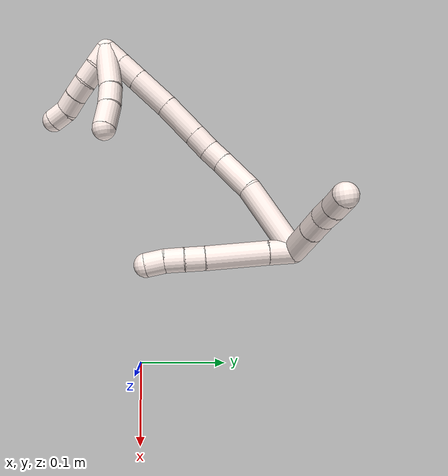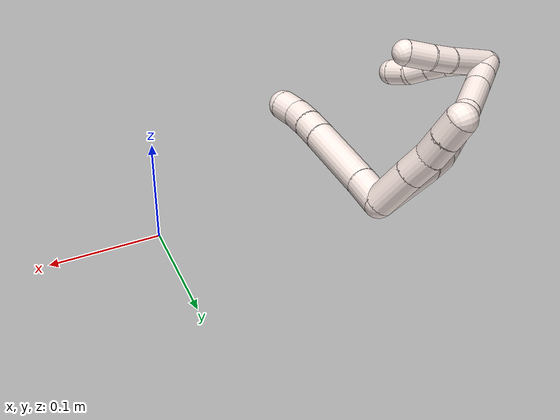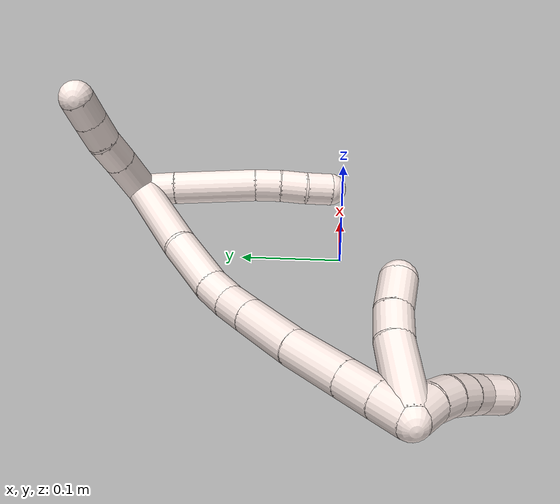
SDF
<sdf version="1.7">
 <world name="default">
  <model name="11">
   <static>0</static>
   <link name="11">
    <collision name="collision-cylinder-e_1_2_8">
     <pose>-0.003458 -0.012545 0.001041 1.48798 -0.268121 -0.247012</pose>
     <geometry><cylinder><radius>0.0125</radius><length>0.026108</length></cylinder></geometry>
     <surface>
      <friction><ode><mu>1.16</mu><mu2>1.16</mu2><slip1>0</slip1><slip2>0</slip2></ode></friction>
      <contact><ode><kp>1e+06</kp><kd>1</kd><max_vel>0</max_vel><min_depth>0.001</min_depth></ode></contact>
     </surface>
    </collision>
    <visual name="visual-cylinder-e_1_2_8">
     <pose>-0.003458 -0.012545 0.001041 1.48798 -0.268121 -0.247012</pose>
     <geometry><cylinder><radius>0.0125</radius><length>0.026108</length></cylinder></geometry>
     <material><ambient>1 0.933333 0.909804 1</ambient></material>
    </visual>
    <collision name="collision-cylinder-e_2_8_9">
     <pose>-0.016241 -0.055456 0.003996 1.50787 -0.297367 -0.279463</pose>
     <geometry><cylinder><radius>0.0125</radius><length>0.063648</length></cylinder></geometry>
     <surface>
      <friction><ode><mu>1.16</mu><mu2>1.16</mu2><slip1>0</slip1><slip2>0</slip2></ode></friction>
      <contact><ode><kp>1e+06</kp><kd>1</kd><max_vel>0</max_vel><min_depth>0.001</min_depth></ode></contact>
     </surface>
    </collision>
    <visual name="visual-cylinder-e_2_8_9">
     <pose>-0.016241 -0.055456 0.003996 1.50787 -0.297367 -0.279463</pose>
     <geometry><cylinder><radius>0.0125</radius><length>0.063648</length></cylinder></geometry>
     <material><ambient>1 0.933333 0.909804 1</ambient></material>
    </visual>
    <collision name="collision-cylinder-e_3_9_10">
     <pose>-0.029066 -0.095246 0.006756 1.48122 -0.354325 -0.324482</pose>
     <geometry><cylinder><radius>0.0125</radius><length>0.020175</length></cylinder></geometry>
     <surface>
      <friction><ode><mu>1.16</mu><mu2>1.16</mu2><slip1>0</slip1><slip2>0</slip2></ode></friction>
      <contact><ode><kp>1e+06</kp><kd>1</kd><max_vel>0</max_vel><min_depth>0.001</min_depth></ode></contact>
     </surface>
    </collision>
    <visual name="visual-cylinder-e_3_9_10">
     <pose>-0.029066 -0.095246 0.006756 1.48122 -0.354325 -0.324482</pose>
     <geometry><cylinder><radius>0.0125</radius><length>0.020175</length></cylinder></geometry>
     <material><ambient>1 0.933333 0.909804 1</ambient></material>
    </visual>
    <collision name="collision-cylinder-e_4_10_11">
     <pose>-0.036749 -0.113726 0.008341 1.48935 -0.431426 -0.398567</pose>
     <geometry><cylinder><radius>0.0125</radius><length>0.020007</length></cylinder></geometry>
     <surface>
      <friction><ode><mu>1.16</mu><mu2>1.16</mu2><slip1>0</slip1><slip2>0</slip2></ode></friction>
      <contact><ode><kp>1e+06</kp><kd>1</kd><max_vel>0</max_vel><min_depth>0.001</min_depth></ode></contact>
     </surface>
    </collision>
    <visual name="visual-cylinder-e_4_10_11">
     <pose>-0.036749 -0.113726 0.008341 1.48935 -0.431426 -0.398567</pose>
     <geometry><cylinder><radius>0.0125</radius><length>0.020007</length></cylinder></geometry>
     <material><ambient>1 0.933333 0.909804 1</ambient></material>
    </visual>
    <collision name="collision-cylinder-e_5_11_6">
     <pose>-0.045042 -0.131907 0.008388 1.64661 -0.422203 -0.454393</pose>
     <geometry><cylinder><radius>0.0125</radius><length>0.020061</length></cylinder></geometry>
     <surface>
      <friction><ode><mu>1.16</mu><mu2>1.16</mu2><slip1>0</slip1><slip2>0</slip2></ode></friction>
      <contact><ode><kp>1e+06</kp><kd>1</kd><max_vel>0</max_vel><min_depth>0.001</min_depth></ode></contact>
     </surface>
    </collision>
    <visual name="visual-cylinder-e_5_11_6">
     <pose>-0.045042 -0.131907 0.008388 1.64661 -0.422203 -0.454393</pose>
     <geometry><cylinder><radius>0.0125</radius><length>0.020061</length></cylinder></geometry>
     <material><ambient>1 0.933333 0.909804 1</ambient></material>
    </visual>
    <collision name="collision-cylinder-e_1_2_12">
     <pose>0.016353 0.001916 0.008578 -0.219787 1.0776 -0.131729</pose>
     <geometry><cylinder><radius>0.0125</radius><length>0.03713</length></cylinder></geometry>
     <surface>
      <friction><ode><mu>1.16</mu><mu2>1.16</mu2><slip1>0</slip1><slip2>0</slip2></ode></friction>
      <contact><ode><kp>1e+06</kp><kd>1</kd><max_vel>0</max_vel><min_depth>0.001</min_depth></ode></contact>
     </surface>
    </collision>
    <visual name="visual-cylinder-e_1_2_12">
     <pose>0.016353 0.001916 0.008578 -0.219787 1.0776 -0.131729</pose>
     <geometry><cylinder><radius>0.0125</radius><length>0.03713</length></cylinder></geometry>
     <material><ambient>1 0.933333 0.909804 1</ambient></material>
    </visual>
    <collision name="collision-cylinder-e_2_12_13">
     <pose>0.042543 0.005239 0.022503 -0.25719 1.0588 -0.151031</pose>
     <geometry><cylinder><radius>0.0125</radius><length>0.022569</length></cylinder></geometry>
     <surface>
      <friction><ode><mu>1.16</mu><mu2>1.16</mu2><slip1>0</slip1><slip2>0</slip2></ode></friction>
      <contact><ode><kp>1e+06</kp><kd>1</kd><max_vel>0</max_vel><min_depth>0.001</min_depth></ode></contact>
     </surface>
    </collision>
    <visual name="visual-cylinder-e_2_12_13">
     <pose>0.042543 0.005239 0.022503 -0.25719 1.0588 -0.151031</pose>
     <geometry><cylinder><radius>0.0125</radius><length>0.022569</length></cylinder></geometry>
     <material><ambient>1 0.933333 0.909804 1</ambient></material>
    </visual>
    <collision name="collision-cylinder-e_3_13_14">
     <pose>0.061709 0.007043 0.031433 -0.110729 1.20202 -0.075959</pose>
     <geometry><cylinder><radius>0.0125</radius><length>0.020002</length></cylinder></geometry>
     <surface>
      <friction><ode><mu>1.16</mu><mu2>1.16</mu2><slip1>0</slip1><slip2>0</slip2></ode></friction>
      <contact><ode><kp>1e+06</kp><kd>1</kd><max_vel>0</max_vel><min_depth>0.001</min_depth></ode></contact>
     </surface>
    </collision>
    <visual name="visual-cylinder-e_3_13_14">
     <pose>0.061709 0.007043 0.031433 -0.110729 1.20202 -0.075959</pose>
     <geometry><cylinder><radius>0.0125</radius><length>0.020002</length></cylinder></geometry>
     <material><ambient>1 0.933333 0.909804 1</ambient></material>
    </visual>
    <collision name="collision-cylinder-e_4_14_5">
     <pose>0.080307 0.007574 0.039147 -0.032037 1.1513 -0.020792</pose>
     <geometry><cylinder><radius>0.0125</radius><length>0.020299</length></cylinder></geometry>
     <surface>
      <friction><ode><mu>1.16</mu><mu2>1.16</mu2><slip1>0</slip1><slip2>0</slip2></ode></friction>
      <contact><ode><kp>1e+06</kp><kd>1</kd><max_vel>0</max_vel><min_depth>0.001</min_depth></ode></contact>
     </surface>
    </collision>
    <visual name="visual-cylinder-e_4_14_5">
     <pose>0.080307 0.007574 0.039147 -0.032037 1.1513 -0.020792</pose>
     <geometry><cylinder><radius>0.0125</radius><length>0.020299</length></cylinder></geometry>
     <material><ambient>1 0.933333 0.909804 1</ambient></material>
    </visual>
    <collision name="collision-cylinder-e_1_2_15">
     <pose>-0.01477 -0.01189 0.035152 0.326154 -0.378796 -0.063062</pose>
     <geometry><cylinder><radius>0.0125</radius><length>0.07988</length></cylinder></geometry>
     <surface>
      <friction><ode><mu>1.16</mu><mu2>1.16</mu2><slip1>0</slip1><slip2>0</slip2></ode></friction>
      <contact><ode><kp>1e+06</kp><kd>1</kd><max_vel>0</max_vel><min_depth>0.001</min_depth></ode></contact>
     </surface>
    </collision>
    <visual name="visual-cylinder-e_1_2_15">
     <pose>-0.01477 -0.01189 0.035152 0.326154 -0.378796 -0.063062</pose>
     <geometry><cylinder><radius>0.0125</radius><length>0.07988</length></cylinder></geometry>
     <material><ambient>1 0.933333 0.909804 1</ambient></material>
    </visual>
    <collision name="collision-cylinder-e_2_15_16">
     <pose>-0.041023 -0.031441 0.086835 0.434002 -0.562363 -0.127188</pose>
     <geometry><cylinder><radius>0.0125</radius><length>0.043072</length></cylinder></geometry>
     <surface>
      <friction><ode><mu>1.16</mu><mu2>1.16</mu2><slip1>0</slip1><slip2>0</slip2></ode></friction>
      <contact><ode><kp>1e+06</kp><kd>1</kd><max_vel>0</max_vel><min_depth>0.001</min_depth></ode></contact>
     </surface>
    </collision>
    <visual name="visual-cylinder-e_2_15_16">
     <pose>-0.041023 -0.031441 0.086835 0.434002 -0.562363 -0.127188</pose>
     <geometry><cylinder><radius>0.0125</radius><length>0.043072</length></cylinder></geometry>
     <material><ambient>1 0.933333 0.909804 1</ambient></material>
    </visual>
    <collision name="collision-cylinder-e_3_16_17">
     <pose>-0.056865 -0.044154 0.111575 0.551655 -0.424727 -0.121905</pose>
     <geometry><cylinder><radius>0.0125</radius><length>0.021158</length></cylinder></geometry>
     <surface>
      <friction><ode><mu>1.16</mu><mu2>1.16</mu2><slip1>0</slip1><slip2>0</slip2></ode></friction>
      <contact><ode><kp>1e+06</kp><kd>1</kd><max_vel>0</max_vel><min_depth>0.001</min_depth></ode></contact>
     </surface>
    </collision>
    <visual name="visual-cylinder-e_3_16_17">
     <pose>-0.056865 -0.044154 0.111575 0.551655 -0.424727 -0.121905</pose>
     <geometry><cylinder><radius>0.0125</radius><length>0.021158</length></cylinder></geometry>
     <material><ambient>1 0.933333 0.909804 1</ambient></material>
    </visual>
    <collision name="collision-cylinder-e_4_17_18">
     <pose>-0.064103 -0.054982 0.12909 0.555511 -0.257022 -0.073656</pose>
     <geometry><cylinder><radius>0.0125</radius><length>0.022651</length></cylinder></geometry>
     <surface>
      <friction><ode><mu>1.16</mu><mu2>1.16</mu2><slip1>0</slip1><slip2>0</slip2></ode></friction>
      <contact><ode><kp>1e+06</kp><kd>1</kd><max_vel>0</max_vel><min_depth>0.001</min_depth></ode></contact>
     </surface>
    </collision>
    <visual name="visual-cylinder-e_4_17_18">
     <pose>-0.064103 -0.054982 0.12909 0.555511 -0.257022 -0.073656</pose>
     <geometry><cylinder><radius>0.0125</radius><length>0.022651</length></cylinder></geometry>
     <material><ambient>1 0.933333 0.909804 1</ambient></material>
    </visual>
    <collision name="collision-cylinder-e_5_18_19">
     <pose>-0.072579 -0.072071 0.156185 0.566402 -0.25951 -0.075914</pose>
     <geometry><cylinder><radius>0.0125</radius><length>0.043622</length></cylinder></geometry>
     <surface>
      <friction><ode><mu>1.16</mu><mu2>1.16</mu2><slip1>0</slip1><slip2>0</slip2></ode></friction>
      <contact><ode><kp>1e+06</kp><kd>1</kd><max_vel>0</max_vel><min_depth>0.001</min_depth></ode></contact>
     </surface>
    </collision>
    <visual name="visual-cylinder-e_5_18_19">
     <pose>-0.072579 -0.072071 0.156185 0.566402 -0.25951 -0.075914</pose>
     <geometry><cylinder><radius>0.0125</radius><length>0.043622</length></cylinder></geometry>
     <material><ambient>1 0.933333 0.909804 1</ambient></material>
    </visual>
    <collision name="collision-cylinder-e_6_19_20">
     <pose>-0.083636 -0.095687 0.190701 0.63419 -0.257113 -0.084793</pose>
     <geometry><cylinder><radius>0.0125</radius><length>0.042943</length></cylinder></geometry>
     <surface>
      <friction><ode><mu>1.16</mu><mu2>1.16</mu2><slip1>0</slip1><slip2>0</slip2></ode></friction>
      <contact><ode><kp>1e+06</kp><kd>1</kd><max_vel>0</max_vel><min_depth>0.001</min_depth></ode></contact>
     </surface>
    </collision>
    <visual name="visual-cylinder-e_6_19_20">
     <pose>-0.083636 -0.095687 0.190701 0.63419 -0.257113 -0.084793</pose>
     <geometry><cylinder><radius>0.0125</radius><length>0.042943</length></cylinder></geometry>
     <material><ambient>1 0.933333 0.909804 1</ambient></material>
    </visual>
    <collision name="collision-cylinder-e_7_20_21">
     <pose>-0.092317 -0.11522 0.217254 0.634316 -0.25819 -0.08517</pose>
     <geometry><cylinder><radius>0.0125</radius><length>0.025233</length></cylinder></geometry>
     <surface>
      <friction><ode><mu>1.16</mu><mu2>1.16</mu2><slip1>0</slip1><slip2>0</slip2></ode></friction>
      <contact><ode><kp>1e+06</kp><kd>1</kd><max_vel>0</max_vel><min_depth>0.001</min_depth></ode></contact>
     </surface>
    </collision>
    <visual name="visual-cylinder-e_7_20_21">
     <pose>-0.092317 -0.11522 0.217254 0.634316 -0.25819 -0.08517</pose>
     <geometry><cylinder><radius>0.0125</radius><length>0.025233</length></cylinder></geometry>
     <material><ambient>1 0.933333 0.909804 1</ambient></material>
    </visual>
    <collision name="collision-cylinder-e_8_21_1">
     <pose>-0.098262 -0.12864 0.235398 0.639892 -0.256855 -0.085522</pose>
     <geometry><cylinder><radius>0.0125</radius><length>0.021442</length></cylinder></geometry>
     <surface>
      <friction><ode><mu>1.16</mu><mu2>1.16</mu2><slip1>0</slip1><slip2>0</slip2></ode></friction>
      <contact><ode><kp>1e+06</kp><kd>1</kd><max_vel>0</max_vel><min_depth>0.001</min_depth></ode></contact>
     </surface>
    </collision>
    <visual name="visual-cylinder-e_8_21_1">
     <pose>-0.098262 -0.12864 0.235398 0.639892 -0.256855 -0.085522</pose>
     <geometry><cylinder><radius>0.0125</radius><length>0.021442</length></cylinder></geometry>
     <material><ambient>1 0.933333 0.909804 1</ambient></material>
    </visual>
    <collision name="collision-cylinder-e_1_1_22">
     <pose>-0.103792 -0.141238 0.236568 2.41081 -0.284545 -0.716516</pose>
     <geometry><cylinder><radius>0.0125</radius><length>0.02</length></cylinder></geometry>
     <surface>
      <friction><ode><mu>1.16</mu><mu2>1.16</mu2><slip1>0</slip1><slip2>0</slip2></ode></friction>
      <contact><ode><kp>1e+06</kp><kd>1</kd><max_vel>0</max_vel><min_depth>0.001</min_depth></ode></contact>
     </surface>
    </collision>
    <visual name="visual-cylinder-e_1_1_22">
     <pose>-0.103792 -0.141238 0.236568 2.41081 -0.284545 -0.716516</pose>
     <geometry><cylinder><radius>0.0125</radius><length>0.02</length></cylinder></geometry>
     <material><ambient>1 0.933333 0.909804 1</ambient></material>
    </visual>
    <collision name="collision-cylinder-e_2_22_23">
     <pose>-0.111204 -0.153671 0.222904 2.39521 -0.478459 -1.11422</pose>
     <geometry><cylinder><radius>0.0125</radius><length>0.02</length></cylinder></geometry>
     <surface>
      <friction><ode><mu>1.16</mu><mu2>1.16</mu2><slip1>0</slip1><slip2>0</slip2></ode></friction>
      <contact><ode><kp>1e+06</kp><kd>1</kd><max_vel>0</max_vel><min_depth>0.001</min_depth></ode></contact>
     </surface>
    </collision>
    <visual name="visual-cylinder-e_2_22_23">
     <pose>-0.111204 -0.153671 0.222904 2.39521 -0.478459 -1.11422</pose>
     <geometry><cylinder><radius>0.0125</radius><length>0.02</length></cylinder></geometry>
     <material><ambient>1 0.933333 0.909804 1</ambient></material>
    </visual>
    <collision name="collision-cylinder-e_3_23_24">
     <pose>-0.121752 -0.165028 0.210364 2.41719 -0.63648 -1.43132</pose>
     <geometry><cylinder><radius>0.0125</radius><length>0.02</length></cylinder></geometry>
     <surface>
      <friction><ode><mu>1.16</mu><mu2>1.16</mu2><slip1>0</slip1><slip2>0</slip2></ode></friction>
      <contact><ode><kp>1e+06</kp><kd>1</kd><max_vel>0</max_vel><min_depth>0.001</min_depth></ode></contact>
     </surface>
    </collision>
    <visual name="visual-cylinder-e_3_23_24">
     <pose>-0.121752 -0.165028 0.210364 2.41719 -0.63648 -1.43132</pose>
     <geometry><cylinder><radius>0.0125</radius><length>0.02</length></cylinder></geometry>
     <material><ambient>1 0.933333 0.909804 1</ambient></material>
    </visual>
    <collision name="collision-cylinder-e_4_24_25">
     <pose>-0.133903 -0.175302 0.198258 2.45906 -0.669763 -1.55039</pose>
     <geometry><cylinder><radius>0.0125</radius><length>0.02</length></cylinder></geometry>
     <surface>
      <friction><ode><mu>1.16</mu><mu2>1.16</mu2><slip1>0</slip1><slip2>0</slip2></ode></friction>
      <contact><ode><kp>1e+06</kp><kd>1</kd><max_vel>0</max_vel><min_depth>0.001</min_depth></ode></contact>
     </surface>
    </collision>
    <visual name="visual-cylinder-e_4_24_25">
     <pose>-0.133903 -0.175302 0.198258 2.45906 -0.669763 -1.55039</pose>
     <geometry><cylinder><radius>0.0125</radius><length>0.02</length></cylinder></geometry>
     <material><ambient>1 0.933333 0.909804 1</ambient></material>
    </visual>
    <collision name="collision-cylinder-e_5_25_4">
     <pose>-0.145966 -0.18743 0.188417 2.05274 -0.625528 -0.981113</pose>
     <geometry><cylinder><radius>0.0125</radius><length>0.02</length></cylinder></geometry>
     <surface>
      <friction><ode><mu>1.16</mu><mu2>1.16</mu2><slip1>0</slip1><slip2>0</slip2></ode></friction>
      <contact><ode><kp>1e+06</kp><kd>1</kd><max_vel>0</max_vel><min_depth>0.001</min_depth></ode></contact>
     </surface>
    </collision>
    <visual name="visual-cylinder-e_5_25_4">
     <pose>-0.145966 -0.18743 0.188417 2.05274 -0.625528 -0.981113</pose>
     <geometry><cylinder><radius>0.0125</radius><length>0.02</length></cylinder></geometry>
     <material><ambient>1 0.933333 0.909804 1</ambient></material>
    </visual>
    <collision name="collision-cylinder-e_1_1_26">
     <pose>-0.091499 -0.138175 0.220574 2.99812 0.385412 2.43588</pose>
     <geometry><cylinder><radius>0.0125</radius><length>0.050464</length></cylinder></geometry>
     <surface>
      <friction><ode><mu>1.16</mu><mu2>1.16</mu2><slip1>0</slip1><slip2>0</slip2></ode></friction>
      <contact><ode><kp>1e+06</kp><kd>1</kd><max_vel>0</max_vel><min_depth>0.001</min_depth></ode></contact>
     </surface>
    </collision>
    <visual name="visual-cylinder-e_1_1_26">
     <pose>-0.091499 -0.138175 0.220574 2.99812 0.385412 2.43588</pose>
     <geometry><cylinder><radius>0.0125</radius><length>0.050464</length></cylinder></geometry>
     <material><ambient>1 0.933333 0.909804 1</ambient></material>
    </visual>
    <collision name="collision-cylinder-e_2_26_27">
     <pose>-0.078443 -0.144585 0.187313 2.84734 0.325608 1.67351</pose>
     <geometry><cylinder><radius>0.0125</radius><length>0.022324</length></cylinder></geometry>
     <surface>
      <friction><ode><mu>1.16</mu><mu2>1.16</mu2><slip1>0</slip1><slip2>0</slip2></ode></friction>
      <contact><ode><kp>1e+06</kp><kd>1</kd><max_vel>0</max_vel><min_depth>0.001</min_depth></ode></contact>
     </surface>
    </collision>
    <visual name="visual-cylinder-e_2_26_27">
     <pose>-0.078443 -0.144585 0.187313 2.84734 0.325608 1.67351</pose>
     <geometry><cylinder><radius>0.0125</radius><length>0.022324</length></cylinder></geometry>
     <material><ambient>1 0.933333 0.909804 1</ambient></material>
    </visual>
    <collision name="collision-cylinder-e_3_27_3">
     <pose>-0.071523 -0.153058 0.165164 2.71916 0.248779 1.05587</pose>
     <geometry><cylinder><radius>0.0125</radius><length>0.027212</length></cylinder></geometry>
     <surface>
      <friction><ode><mu>1.16</mu><mu2>1.16</mu2><slip1>0</slip1><slip2>0</slip2></ode></friction>
      <contact><ode><kp>1e+06</kp><kd>1</kd><max_vel>0</max_vel><min_depth>0.001</min_depth></ode></contact>
     </surface>
    </collision>
    <visual name="visual-cylinder-e_3_27_3">
     <pose>-0.071523 -0.153058 0.165164 2.71916 0.248779 1.05587</pose>
     <geometry><cylinder><radius>0.0125</radius><length>0.027212</length></cylinder></geometry>
     <material><ambient>1 0.933333 0.909804 1</ambient></material>
    </visual>
    <collision name="collision-sphere-3">
     <pose>-0.068172 -0.158465 0.153136 0 -0 0</pose>
     <geometry><sphere><radius>0.0125</radius></sphere></geometry>
     <surface>
      <friction><ode><mu>1.16</mu><mu2>1.16</mu2><slip1>0</slip1><slip2>0</slip2></ode></friction>
      <contact><ode><kp>1e+06</kp><kd>1</kd><max_vel>0</max_vel><min_depth>0.001</min_depth></ode></contact>
     </surface>
    </collision>
    <visual name="visual-sphere-3">
     <pose>-0.068172 -0.158465 0.153136 0 -0 0</pose>
     <geometry><sphere><radius>0.0125</radius></sphere></geometry>
     <material><ambient>1 0.933333 0.909804 1</ambient></material>
    </visual>
    <collision name="collision-sphere-27">
     <pose>-0.074873 -0.147652 0.177192 0 -0 0</pose>
     <geometry><sphere><radius>0.0125</radius></sphere></geometry>
     <surface>
      <friction><ode><mu>1.16</mu><mu2>1.16</mu2><slip1>0</slip1><slip2>0</slip2></ode></friction>
      <contact><ode><kp>1e+06</kp><kd>1</kd><max_vel>0</max_vel><min_depth>0.001</min_depth></ode></contact>
     </surface>
    </collision>
    <visual name="visual-sphere-27">
     <pose>-0.074873 -0.147652 0.177192 0 -0 0</pose>
     <geometry><sphere><radius>0.0125</radius></sphere></geometry>
     <material><ambient>1 0.933333 0.909804 1</ambient></material>
    </visual>
    <collision name="collision-sphere-26">
     <pose>-0.082014 -0.141518 0.197433 0 -0 0</pose>
     <geometry><sphere><radius>0.0125</radius></sphere></geometry>
     <surface>
      <friction><ode><mu>1.16</mu><mu2>1.16</mu2><slip1>0</slip1><slip2>0</slip2></ode></friction>
      <contact><ode><kp>1e+06</kp><kd>1</kd><max_vel>0</max_vel><min_depth>0.001</min_depth></ode></contact>
     </surface>
    </collision>
    <visual name="visual-sphere-26">
     <pose>-0.082014 -0.141518 0.197433 0 -0 0</pose>
     <geometry><sphere><radius>0.0125</radius></sphere></geometry>
     <material><ambient>1 0.933333 0.909804 1</ambient></material>
    </visual>
    <collision name="collision-sphere-4">
     <pose>-0.151822 -0.194614 0.18466 0 -0 0</pose>
     <geometry><sphere><radius>0.0125</radius></sphere></geometry>
     <surface>
      <friction><ode><mu>1.16</mu><mu2>1.16</mu2><slip1>0</slip1><slip2>0</slip2></ode></friction>
      <contact><ode><kp>1e+06</kp><kd>1</kd><max_vel>0</max_vel><min_depth>0.001</min_depth></ode></contact>
     </surface>
    </collision>
    <visual name="visual-sphere-4">
     <pose>-0.151822 -0.194614 0.18466 0 -0 0</pose>
     <geometry><sphere><radius>0.0125</radius></sphere></geometry>
     <material><ambient>1 0.933333 0.909804 1</ambient></material>
    </visual>
    <collision name="collision-sphere-25">
     <pose>-0.140111 -0.180247 0.192175 0 -0 0</pose>
     <geometry><sphere><radius>0.0125</radius></sphere></geometry>
     <surface>
      <friction><ode><mu>1.16</mu><mu2>1.16</mu2><slip1>0</slip1><slip2>0</slip2></ode></friction>
      <contact><ode><kp>1e+06</kp><kd>1</kd><max_vel>0</max_vel><min_depth>0.001</min_depth></ode></contact>
     </surface>
    </collision>
    <visual name="visual-sphere-25">
     <pose>-0.140111 -0.180247 0.192175 0 -0 0</pose>
     <geometry><sphere><radius>0.0125</radius></sphere></geometry>
     <material><ambient>1 0.933333 0.909804 1</ambient></material>
    </visual>
    <collision name="collision-sphere-24">
     <pose>-0.127695 -0.170357 0.204342 0 -0 0</pose>
     <geometry><sphere><radius>0.0125</radius></sphere></geometry>
     <surface>
      <friction><ode><mu>1.16</mu><mu2>1.16</mu2><slip1>0</slip1><slip2>0</slip2></ode></friction>
      <contact><ode><kp>1e+06</kp><kd>1</kd><max_vel>0</max_vel><min_depth>0.001</min_depth></ode></contact>
     </surface>
    </collision>
    <visual name="visual-sphere-24">
     <pose>-0.127695 -0.170357 0.204342 0 -0 0</pose>
     <geometry><sphere><radius>0.0125</radius></sphere></geometry>
     <material><ambient>1 0.933333 0.909804 1</ambient></material>
    </visual>
    <collision name="collision-sphere-23">
     <pose>-0.115808 -0.159699 0.216387 0 -0 0</pose>
     <geometry><sphere><radius>0.0125</radius></sphere></geometry>
     <surface>
      <friction><ode><mu>1.16</mu><mu2>1.16</mu2><slip1>0</slip1><slip2>0</slip2></ode></friction>
      <contact><ode><kp>1e+06</kp><kd>1</kd><max_vel>0</max_vel><min_depth>0.001</min_depth></ode></contact>
     </surface>
    </collision>
    <visual name="visual-sphere-23">
     <pose>-0.115808 -0.159699 0.216387 0 -0 0</pose>
     <geometry><sphere><radius>0.0125</radius></sphere></geometry>
     <material><ambient>1 0.933333 0.909804 1</ambient></material>
    </visual>
    <collision name="collision-sphere-22">
     <pose>-0.1066 -0.147644 0.229421 0 -0 0</pose>
     <geometry><sphere><radius>0.0125</radius></sphere></geometry>
     <surface>
      <friction><ode><mu>1.16</mu><mu2>1.16</mu2><slip1>0</slip1><slip2>0</slip2></ode></friction>
      <contact><ode><kp>1e+06</kp><kd>1</kd><max_vel>0</max_vel><min_depth>0.001</min_depth></ode></contact>
     </surface>
    </collision>
    <visual name="visual-sphere-22">
     <pose>-0.1066 -0.147644 0.229421 0 -0 0</pose>
     <geometry><sphere><radius>0.0125</radius></sphere></geometry>
     <material><ambient>1 0.933333 0.909804 1</ambient></material>
    </visual>
    <collision name="collision-sphere-1">
     <pose>-0.100985 -0.134832 0.243715 0 -0 0</pose>
     <geometry><sphere><radius>0.0125</radius></sphere></geometry>
     <surface>
      <friction><ode><mu>1.16</mu><mu2>1.16</mu2><slip1>0</slip1><slip2>0</slip2></ode></friction>
      <contact><ode><kp>1e+06</kp><kd>1</kd><max_vel>0</max_vel><min_depth>0.001</min_depth></ode></contact>
     </surface>
    </collision>
    <visual name="visual-sphere-1">
     <pose>-0.100985 -0.134832 0.243715 0 -0 0</pose>
     <geometry><sphere><radius>0.0125</radius></sphere></geometry>
     <material><ambient>1 0.933333 0.909804 1</ambient></material>
    </visual>
    <collision name="collision-sphere-21">
     <pose>-0.095538 -0.122449 0.22708 0 -0 0</pose>
     <geometry><sphere><radius>0.0125</radius></sphere></geometry>
     <surface>
      <friction><ode><mu>1.16</mu><mu2>1.16</mu2><slip1>0</slip1><slip2>0</slip2></ode></friction>
      <contact><ode><kp>1e+06</kp><kd>1</kd><max_vel>0</max_vel><min_depth>0.001</min_depth></ode></contact>
     </surface>
    </collision>
    <visual name="visual-sphere-21">
     <pose>-0.095538 -0.122449 0.22708 0 -0 0</pose>
     <geometry><sphere><radius>0.0125</radius></sphere></geometry>
     <material><ambient>1 0.933333 0.909804 1</ambient></material>
    </visual>
    <collision name="collision-sphere-6">
     <pose>-0.049152 -0.14103 0.007695 0 -0 0</pose>
     <geometry><sphere><radius>0.0125</radius></sphere></geometry>
     <surface>
      <friction><ode><mu>1.16</mu><mu2>1.16</mu2><slip1>0</slip1><slip2>0</slip2></ode></friction>
      <contact><ode><kp>1e+06</kp><kd>1</kd><max_vel>0</max_vel><min_depth>0.001</min_depth></ode></contact>
     </surface>
    </collision>
    <visual name="visual-sphere-6">
     <pose>-0.049152 -0.14103 0.007695 0 -0 0</pose>
     <geometry><sphere><radius>0.0125</radius></sphere></geometry>
     <material><ambient>1 0.933333 0.909804 1</ambient></material>
    </visual>
    <collision name="collision-sphere-11">
     <pose>-0.040932 -0.122783 0.009081 0 -0 0</pose>
     <geometry><sphere><radius>0.0125</radius></sphere></geometry>
     <surface>
      <friction><ode><mu>1.16</mu><mu2>1.16</mu2><slip1>0</slip1><slip2>0</slip2></ode></friction>
      <contact><ode><kp>1e+06</kp><kd>1</kd><max_vel>0</max_vel><min_depth>0.001</min_depth></ode></contact>
     </surface>
    </collision>
    <visual name="visual-sphere-11">
     <pose>-0.040932 -0.122783 0.009081 0 -0 0</pose>
     <geometry><sphere><radius>0.0125</radius></sphere></geometry>
     <material><ambient>1 0.933333 0.909804 1</ambient></material>
    </visual>
    <collision name="collision-sphere-10">
     <pose>-0.032566 -0.10467 0.007602 0 -0 0</pose>
     <geometry><sphere><radius>0.0125</radius></sphere></geometry>
     <surface>
      <friction><ode><mu>1.16</mu><mu2>1.16</mu2><slip1>0</slip1><slip2>0</slip2></ode></friction>
      <contact><ode><kp>1e+06</kp><kd>1</kd><max_vel>0</max_vel><min_depth>0.001</min_depth></ode></contact>
     </surface>
    </collision>
    <visual name="visual-sphere-10">
     <pose>-0.032566 -0.10467 0.007602 0 -0 0</pose>
     <geometry><sphere><radius>0.0125</radius></sphere></geometry>
     <material><ambient>1 0.933333 0.909804 1</ambient></material>
    </visual>
    <collision name="collision-sphere-9">
     <pose>-0.025566 -0.085823 0.005909 0 -0 0</pose>
     <geometry><sphere><radius>0.0125</radius></sphere></geometry>
     <surface>
      <friction><ode><mu>1.16</mu><mu2>1.16</mu2><slip1>0</slip1><slip2>0</slip2></ode></friction>
      <contact><ode><kp>1e+06</kp><kd>1</kd><max_vel>0</max_vel><min_depth>0.001</min_depth></ode></contact>
     </surface>
    </collision>
    <visual name="visual-sphere-9">
     <pose>-0.025566 -0.085823 0.005909 0 -0 0</pose>
     <geometry><sphere><radius>0.0125</radius></sphere></geometry>
     <material><ambient>1 0.933333 0.909804 1</ambient></material>
    </visual>
    <collision name="collision-sphere-2">
     <geometry><sphere><radius>0.0125</radius></sphere></geometry>
     <surface>
      <friction><ode><mu>1.16</mu><mu2>1.16</mu2><slip1>0</slip1><slip2>0</slip2></ode></friction>
      <contact><ode><kp>1e+06</kp><kd>1</kd><max_vel>0</max_vel><min_depth>0.001</min_depth></ode></contact>
     </surface>
    </collision>
    <visual name="visual-sphere-2">
     <geometry><sphere><radius>0.0125</radius></sphere></geometry>
     <material><ambient>1 0.933333 0.909804 1</ambient></material>
    </visual>
    <collision name="collision-sphere-19">
     <pose>-0.078176 -0.083383 0.173974 0 -0 0</pose>
     <geometry><sphere><radius>0.0125</radius></sphere></geometry>
     <surface>
      <friction><ode><mu>1.16</mu><mu2>1.16</mu2><slip1>0</slip1><slip2>0</slip2></ode></friction>
      <contact><ode><kp>1e+06</kp><kd>1</kd><max_vel>0</max_vel><min_depth>0.001</min_depth></ode></contact>
     </surface>
    </collision>
    <visual name="visual-sphere-19">
     <pose>-0.078176 -0.083383 0.173974 0 -0 0</pose>
     <geometry><sphere><radius>0.0125</radius></sphere></geometry>
     <material><ambient>1 0.933333 0.909804 1</ambient></material>
    </visual>
    <collision name="collision-sphere-8">
     <pose>-0.006917 -0.025089 0.002083 0 -0 0</pose>
     <geometry><sphere><radius>0.0125</radius></sphere></geometry>
     <surface>
      <friction><ode><mu>1.16</mu><mu2>1.16</mu2><slip1>0</slip1><slip2>0</slip2></ode></friction>
      <contact><ode><kp>1e+06</kp><kd>1</kd><max_vel>0</max_vel><min_depth>0.001</min_depth></ode></contact>
     </surface>
    </collision>
    <visual name="visual-sphere-8">
     <pose>-0.006917 -0.025089 0.002083 0 -0 0</pose>
     <geometry><sphere><radius>0.0125</radius></sphere></geometry>
     <material><ambient>1 0.933333 0.909804 1</ambient></material>
    </visual>
    <collision name="collision-sphere-12">
     <pose>0.032705 0.003833 0.017156 0 -0 0</pose>
     <geometry><sphere><radius>0.0125</radius></sphere></geometry>
     <surface>
      <friction><ode><mu>1.16</mu><mu2>1.16</mu2><slip1>0</slip1><slip2>0</slip2></ode></friction>
      <contact><ode><kp>1e+06</kp><kd>1</kd><max_vel>0</max_vel><min_depth>0.001</min_depth></ode></contact>
     </surface>
    </collision>
    <visual name="visual-sphere-12">
     <pose>0.032705 0.003833 0.017156 0 -0 0</pose>
     <geometry><sphere><radius>0.0125</radius></sphere></geometry>
     <material><ambient>1 0.933333 0.909804 1</ambient></material>
    </visual>
    <collision name="collision-sphere-13">
     <pose>0.05238 0.006645 0.02785 0 -0 0</pose>
     <geometry><sphere><radius>0.0125</radius></sphere></geometry>
     <surface>
      <friction><ode><mu>1.16</mu><mu2>1.16</mu2><slip1>0</slip1><slip2>0</slip2></ode></friction>
      <contact><ode><kp>1e+06</kp><kd>1</kd><max_vel>0</max_vel><min_depth>0.001</min_depth></ode></contact>
     </surface>
    </collision>
    <visual name="visual-sphere-13">
     <pose>0.05238 0.006645 0.02785 0 -0 0</pose>
     <geometry><sphere><radius>0.0125</radius></sphere></geometry>
     <material><ambient>1 0.933333 0.909804 1</ambient></material>
    </visual>
    <collision name="collision-sphere-14">
     <pose>0.071037 0.007442 0.035016 0 -0 0</pose>
     <geometry><sphere><radius>0.0125</radius></sphere></geometry>
     <surface>
      <friction><ode><mu>1.16</mu><mu2>1.16</mu2><slip1>0</slip1><slip2>0</slip2></ode></friction>
      <contact><ode><kp>1e+06</kp><kd>1</kd><max_vel>0</max_vel><min_depth>0.001</min_depth></ode></contact>
     </surface>
    </collision>
    <visual name="visual-sphere-14">
     <pose>0.071037 0.007442 0.035016 0 -0 0</pose>
     <geometry><sphere><radius>0.0125</radius></sphere></geometry>
     <material><ambient>1 0.933333 0.909804 1</ambient></material>
    </visual>
    <collision name="collision-sphere-5">
     <pose>0.089576 0.007707 0.043279 0 -0 0</pose>
     <geometry><sphere><radius>0.0125</radius></sphere></geometry>
     <surface>
      <friction><ode><mu>1.16</mu><mu2>1.16</mu2><slip1>0</slip1><slip2>0</slip2></ode></friction>
      <contact><ode><kp>1e+06</kp><kd>1</kd><max_vel>0</max_vel><min_depth>0.001</min_depth></ode></contact>
     </surface>
    </collision>
    <visual name="visual-sphere-5">
     <pose>0.089576 0.007707 0.043279 0 -0 0</pose>
     <geometry><sphere><radius>0.0125</radius></sphere></geometry>
     <material><ambient>1 0.933333 0.909804 1</ambient></material>
    </visual>
    <collision name="collision-sphere-15">
     <pose>-0.02954 -0.023779 0.070305 0 -0 0</pose>
     <geometry><sphere><radius>0.0125</radius></sphere></geometry>
     <surface>
      <friction><ode><mu>1.16</mu><mu2>1.16</mu2><slip1>0</slip1><slip2>0</slip2></ode></friction>
      <contact><ode><kp>1e+06</kp><kd>1</kd><max_vel>0</max_vel><min_depth>0.001</min_depth></ode></contact>
     </surface>
    </collision>
    <visual name="visual-sphere-15">
     <pose>-0.02954 -0.023779 0.070305 0 -0 0</pose>
     <geometry><sphere><radius>0.0125</radius></sphere></geometry>
     <material><ambient>1 0.933333 0.909804 1</ambient></material>
    </visual>
    <collision name="collision-sphere-16">
     <pose>-0.052506 -0.039102 0.103366 0 -0 0</pose>
     <geometry><sphere><radius>0.0125</radius></sphere></geometry>
     <surface>
      <friction><ode><mu>1.16</mu><mu2>1.16</mu2><slip1>0</slip1><slip2>0</slip2></ode></friction>
      <contact><ode><kp>1e+06</kp><kd>1</kd><max_vel>0</max_vel><min_depth>0.001</min_depth></ode></contact>
     </surface>
    </collision>
    <visual name="visual-sphere-16">
     <pose>-0.052506 -0.039102 0.103366 0 -0 0</pose>
     <geometry><sphere><radius>0.0125</radius></sphere></geometry>
     <material><ambient>1 0.933333 0.909804 1</ambient></material>
    </visual>
    <collision name="collision-sphere-17">
     <pose>-0.061224 -0.049206 0.119784 0 -0 0</pose>
     <geometry><sphere><radius>0.0125</radius></sphere></geometry>
     <surface>
      <friction><ode><mu>1.16</mu><mu2>1.16</mu2><slip1>0</slip1><slip2>0</slip2></ode></friction>
      <contact><ode><kp>1e+06</kp><kd>1</kd><max_vel>0</max_vel><min_depth>0.001</min_depth></ode></contact>
     </surface>
    </collision>
    <visual name="visual-sphere-17">
     <pose>-0.061224 -0.049206 0.119784 0 -0 0</pose>
     <geometry><sphere><radius>0.0125</radius></sphere></geometry>
     <material><ambient>1 0.933333 0.909804 1</ambient></material>
    </visual>
    <collision name="collision-sphere-18">
     <pose>-0.066982 -0.060759 0.138396 0 -0 0</pose>
     <geometry><sphere><radius>0.0125</radius></sphere></geometry>
     <surface>
      <friction><ode><mu>1.16</mu><mu2>1.16</mu2><slip1>0</slip1><slip2>0</slip2></ode></friction>
      <contact><ode><kp>1e+06</kp><kd>1</kd><max_vel>0</max_vel><min_depth>0.001</min_depth></ode></contact>
     </surface>
    </collision>
    <visual name="visual-sphere-18">
     <pose>-0.066982 -0.060759 0.138396 0 -0 0</pose>
     <geometry><sphere><radius>0.0125</radius></sphere></geometry>
     <material><ambient>1 0.933333 0.909804 1</ambient></material>
    </visual>
    <collision name="collision-sphere-20">
     <pose>-0.089095 -0.107991 0.207429 0 -0 0</pose>
     <geometry><sphere><radius>0.0125</radius></sphere></geometry>
     <surface>
      <friction><ode><mu>1.16</mu><mu2>1.16</mu2><slip1>0</slip1><slip2>0</slip2></ode></friction>
      <contact><ode><kp>1e+06</kp><kd>1</kd><max_vel>0</max_vel><min_depth>0.001</min_depth></ode></contact>
     </surface>
    </collision>
    <visual name="visual-sphere-20">
     <pose>-0.089095 -0.107991 0.207429 0 -0 0</pose>
     <geometry><sphere><radius>0.0125</radius></sphere></geometry>
     <material><ambient>1 0.933333 0.909804 1</ambient></material>
    </visual>
    <inertial>
     <pose>-0.048481 -0.077917 0.108406 0 -0 0</pose>
     <mass>0.75</mass>
     <inertia><ixx>8.6e-05</ixx><ixy>0</ixy><ixz>0</ixz><iyy>6.1e-05</iyy><iyz>0</iyz><izz>0.000103</izz></inertia>
    </inertial>
   </link>
   <pose>-0.130018 0.160897 0.118967 -1.46365 -1.24077 1.62022</pose>
  </model>
 </world>
</sdf>
